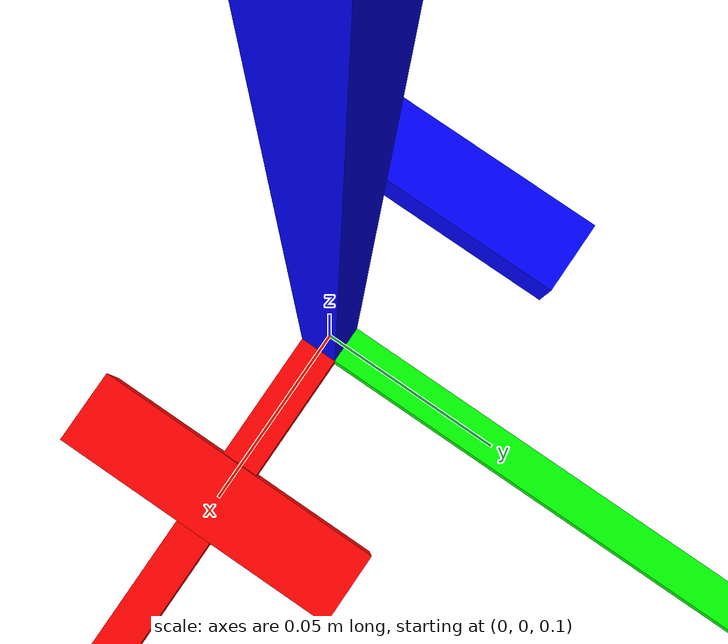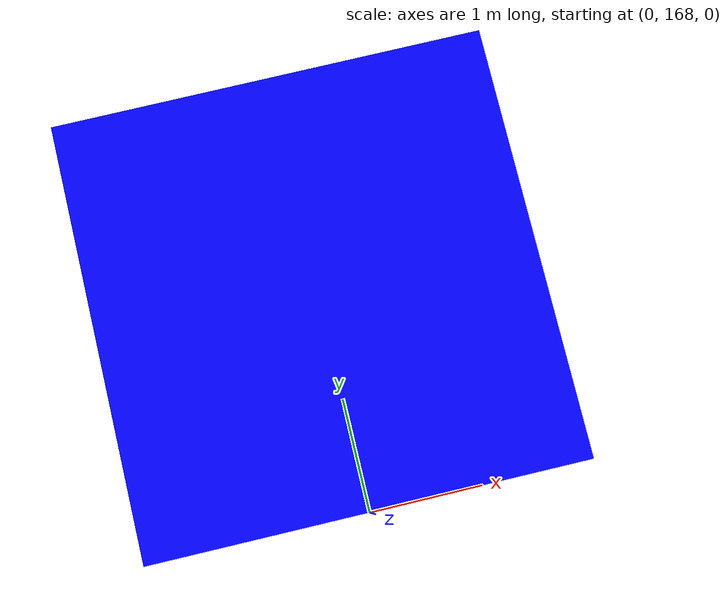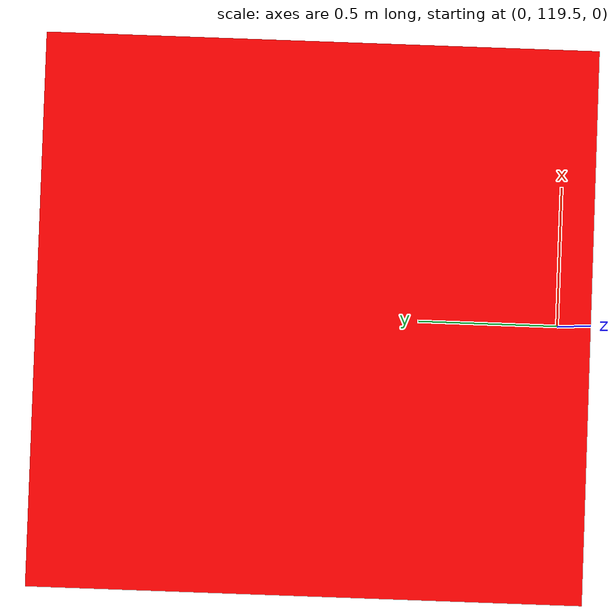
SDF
<sdf version="1.7">
 <world name="runway">
  <physics name="1ms" type="ignore">
   <max_step_size>0.001</max_step_size>
   <real_time_factor>1</real_time_factor>
  </physics>
  <plugin filename="gz-sim-sensors-system" name="gz::sim::systems::Sensors">
   <render_engine>ogre2</render_engine>
  </plugin>
  <plugin filename="gz-sim-physics-system" name="gz::sim::systems::Physics"/>
  <plugin filename="gz-sim-user-commands-system" name="gz::sim::systems::UserCommands"/>
  <plugin filename="gz-sim-scene-broadcaster-system" name="gz::sim::systems::SceneBroadcaster"/>
  <plugin filename="gz-sim-imu-system" name="gz::sim::systems::Imu"/>
  <plugin filename="gz-sim-navsat-system" name="gz::sim::systems::NavSat"/>
  <scene><ambient>1.0 1.0 1.0</ambient><background>0.8 0.8 0.8</background></scene>
  <spherical_coordinates>
   <latitude_deg>-35.363262</latitude_deg>
   <longitude_deg>149.165237</longitude_deg>
   <elevation>584</elevation>
   <heading_deg>0</heading_deg>
   <surface_model>EARTH_WGS84</surface_model>
  </spherical_coordinates>
  <light type="directional" name="sun">
   <pose>0 0 10 0 0 0</pose>
   <diffuse>0.8 0.8 0.8 1</diffuse>
   <specular>0.8 0.8 0.8 1</specular>
   <attenuation>
    <range>1000</range>
    <constant>0.9</constant>
    <linear>0.01</linear>
    <quadratic>0.001</quadratic>
   </attenuation>
   <direction>-0.5 0.1 -0.9</direction>
  </light>
  <model name="axes">
   <static>1</static>
   <link name="link">
    <visual name="r">
     <cast_shadows>0</cast_shadows>
     <pose>5 0 0.1 0 0 0</pose>
     <geometry><box><size>10 0.01 0.01</size></box></geometry>
     <material>
      <ambient>1 0 0 1</ambient>
      <diffuse>1 0 0 1</diffuse>
      <emissive>1 0 0 1</emissive>
      <specular>0.5 0.5 0.5 1</specular>
     </material>
    </visual>
    <visual name="g">
     <cast_shadows>0</cast_shadows>
     <pose>0 5 0.1 0 0 0</pose>
     <geometry><box><size>0.01 10 0.01</size></box></geometry>
     <material>
      <ambient>0 1 0 1</ambient>
      <diffuse>0 1 0 1</diffuse>
      <emissive>0 1 0 1</emissive>
      <specular>0.5 0.5 0.5 1</specular>
     </material>
    </visual>
    <visual name="b">
     <cast_shadows>0</cast_shadows>
     <pose>0 0 5.1 0 0 0</pose>
     <geometry><box><size>0.01 0.01 10</size></box></geometry>
     <material>
      <ambient>0 0 1 1</ambient>
      <diffuse>0 0 1 1</diffuse>
      <emissive>0 0 1 1</emissive>
      <specular>0.5 0.5 0.5 1</specular>
     </material>
    </visual>
   </link>
  </model>
  <include>
   <name>payload_right</name>
   <pose degrees="true">0.05 0 0.15 0 0 90</pose>
   <uri>model://payload_red</uri>
  </include>
  <include>
   <name>payload_left</name>
   <pose degrees="true">-0.05 0 0.15 0 0 90</pose>
   <uri>model://payload_blue</uri>
  </include>
  <include><name>dropzone_red</name><pose>0 120.38 0 0 0 0</pose><uri>model://dropzone_red</uri></include>
  <include><name>dropzone_blue</name><pose>0 170.0 0 0 0 0</pose><uri>model://dropzone_blue</uri></include>
 </world>
</sdf>

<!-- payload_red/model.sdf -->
<sdf version="1.9">
  <model name="payload_red">
    <link name="payload_base_link">
      <pose degrees="true">0 0 -0.05 0 0 0</pose>
      <inertial>
        <mass>0.4</mass>
        <inertia>
          <ixx>0.0001</ixx>
          <iyy>0.0001</iyy>
          <izz>0.0001</izz>
        </inertia>
      </inertial>

      <collision name="collision">
        <geometry>
          <box>
            <size>0.08 0.02 0.02</size>
          </box>
        </geometry>
        <surface>
          <friction>
            <ode>
              <mu>0.3</mu>
              <mu2>0.3</mu2>
            </ode>
          </friction>
          <contact>
            <ode>
              <max_vel>0.0</max_vel>
              <min_depth>0.001</min_depth>
            </ode>
          </contact>
        </surface>
      </collision>

      <visual name="visual">
        <geometry>
          <box>
            <size>0.08 0.02 0.02</size>
          </box>
        </geometry>
        <material>
          <ambient>1 0 0 1</ambient>
          <diffuse>1 0 0 1</diffuse>
          <specular>0.1 0.1 0.1 1</specular>
        </material>
      </visual>
    </link>
  </model>
</sdf>

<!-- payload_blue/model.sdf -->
<sdf version="1.9">
  <model name="payload_blue">
    <link name="payload_base_link">
      <pose degrees="true">0 0 -0.05 0 0 0</pose>
      <inertial>
        <mass>0.4</mass>
        <inertia>
          <ixx>0.0001</ixx>
          <iyy>0.0001</iyy>
          <izz>0.0001</izz>
        </inertia>
      </inertial>

      <collision name="collision">
        <geometry>
          <box>
            <size>0.08 0.02 0.02</size>
          </box>
        </geometry>
        <surface>
          <friction>
            <ode>
              <mu>0.3</mu>
              <mu2>0.3</mu2>
            </ode>
          </friction>
          <contact>
            <ode>
              <max_vel>0.0</max_vel>
              <min_depth>0.001</min_depth>
            </ode>
          </contact>
        </surface>
      </collision>

      <visual name="visual">
        <geometry>
          <box>
            <size>0.08 0.02 0.02</size>
          </box>
        </geometry>
        <material>
          <ambient>0 0 1 1</ambient>
          <diffuse>0 0 1 1</diffuse>
          <specular>0.1 0.1 0.1 1</specular>
        </material>
      </visual>
    </link>
  </model>
</sdf>

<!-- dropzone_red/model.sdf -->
<sdf version="1.6">
  <model name="dropzone_red">
    <static>true</static>
    <link name="link">
      <visual name="visual">
        <pose>0 0 0.001 0 0 0</pose>
        <geometry>
          <box><size>2 2 0.001</size></box>
        </geometry>
        <material>
          <ambient>1 0 0 1</ambient>
          <diffuse>1 0 0 1</diffuse>
          <specular>0 0 0 1</specular>
        </material>
      </visual>
    </link>
  </model>
</sdf>

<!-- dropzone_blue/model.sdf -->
<sdf version="1.6">
  <model name="dropzone_blue">
    <static>true</static>
    <link name="link">
      <visual name="visual">
        <pose>0 0 0.001 0 0 0</pose>
        <geometry>
          <box><size>4 4 0.001</size></box>
        </geometry>
        <material>
          <ambient>0 0 1 1</ambient>
          <diffuse>0 0 1 1</diffuse>
          <specular>0 0 0 1</specular>
        </material>
      </visual>
    </link>
  </model>
</sdf>
